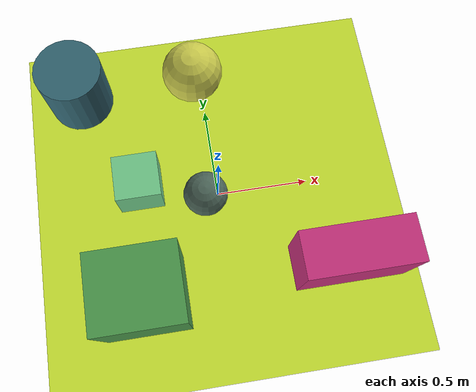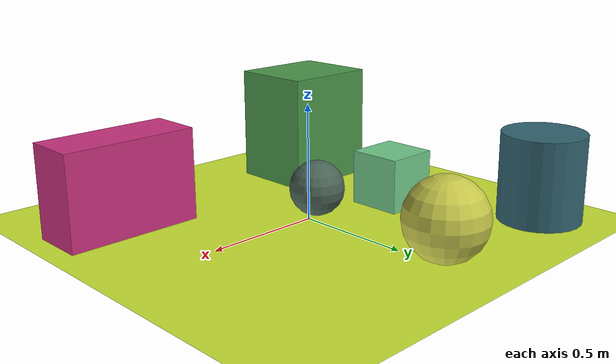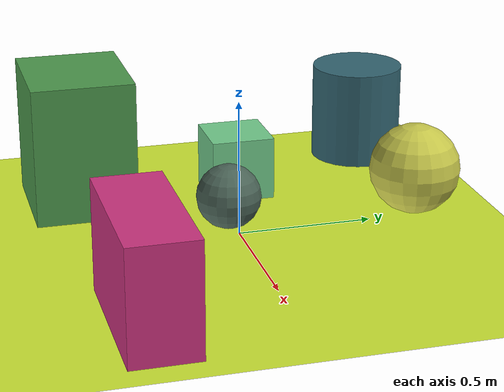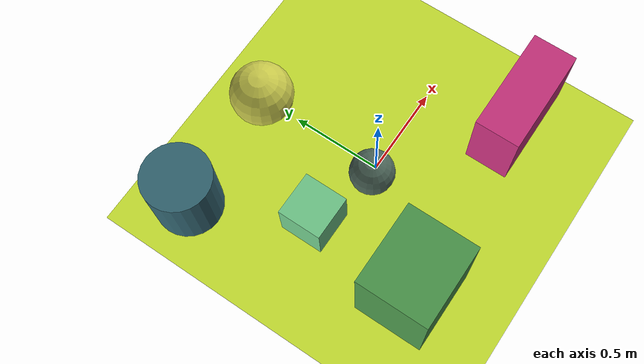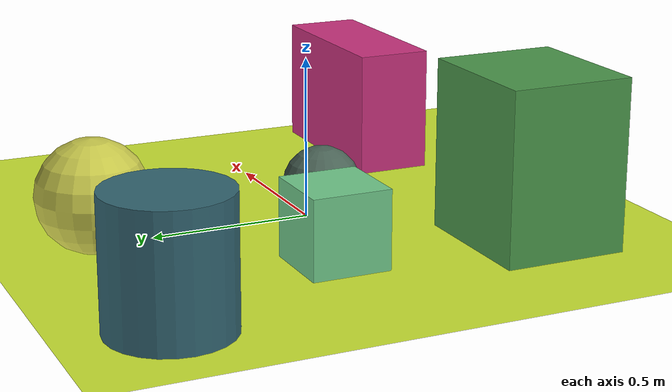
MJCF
<mujoco>
   <asset>
<texture type="skybox" builtin="gradient" rgb1="0.6 0.9 1.0" rgb2="0.4 0.9 0.7" width="256" height="256"/>
<texture name="gradient_0" builtin="gradient" rgb1="0.3 0.3 0.7" rgb2="0.3 0.5 0.0" width="200" height="200"/>
<texture name="gradient_1" builtin="gradient" rgb1="0.4 1.0 0.5" rgb2="0.5 0.6 0.6" width="200" height="200"/>
<texture name="flat_2" builtin="flat" rgb1="0.8 0.2 0.5" rgb2="0.8 0.2 0.5"  width="200" height="200"/>
<texture name="gradient_3" builtin="gradient" rgb1="0.3 0.7 0.4" rgb2="0.1 0.1 0.5" width="200" height="200"/>
<texture name="flat_4" builtin="flat" rgb1="0.8 0.8 0.3" rgb2="0.8 0.8 0.3"  width="200" height="200"/>
<texture name="flat_5" builtin="flat" rgb1="0.3 0.6 0.3" rgb2="0.3 0.6 0.3"  width="200" height="200"/><material name="gradient_0_mat" reflectance="0" texture="gradient_0" texuniform="true"/>
<material name="gradient_1_mat" reflectance="0" texture="gradient_1" texuniform="true"/>
<material name="flat_2_mat" reflectance="0" texture="flat_2" texuniform="true"/>
<material name="gradient_3_mat" reflectance="0" texture="gradient_3" texuniform="true"/>
<material name="flat_4_mat" reflectance="0" texture="flat_4" texuniform="true"/>
<material name="flat_5_mat" reflectance="0" texture="flat_5" texuniform="true"/>
   </asset>

   <worldbody>
      <light diffuse=".9 .9 .9" pos="0 0 3" dir="0 0 -1"/>
     <geom type="plane" size="1 1 0.1" rgba="0.8 0.9 0.2 1"/>
<geom type="sphere" pos="-0.07 -0.02 0.12" size="0.12 0.12 0.12" material="gradient_0_mat" />
<geom type="box" pos="-0.42 0.1 0.12" size="0.12 0.12 0.12" material="gradient_1_mat" />
<geom type="box" pos="0.62 -0.47 0.2" size="0.29 0.12 0.2" material="flat_2_mat" />
<geom type="cylinder" pos="-0.7 0.69 0.19" size="0.18 0.19 0.19" material="gradient_3_mat" />
<geom type="sphere" pos="-0.04 0.69 0.17" size="0.17 0.17 0.17" material="flat_4_mat" />
<geom type="box" pos="-0.46 -0.51 0.26" size="0.22 0.19 0.26" material="flat_5_mat" /><camera euler="60 0 180" fovy="60" name="camera_a" pos="0 -1.5 1"></camera>   </worldbody>
</mujoco>
